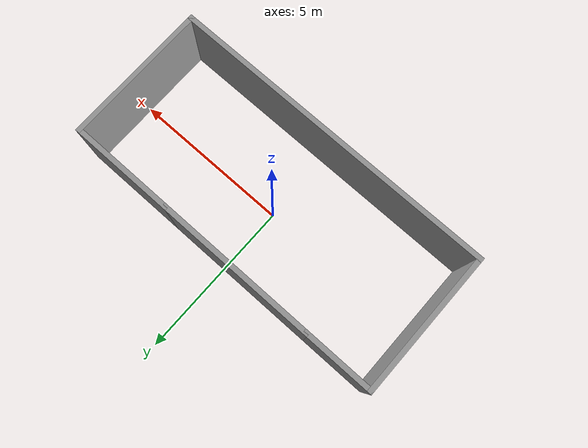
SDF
<?xml version='1.0'?>
<sdf version='1.7'>
  <model name='wall'>
    <pose>-0.014125 -0.112525 0 0 -0 0</pose>
    <link name='Wall_3'>
      <collision name='Wall_3_Collision'>
        <geometry>
          <box>
            <size>5 0.15 2.5</size>
          </box>
        </geometry>
        <pose>0 0 1.25 0 -0 0</pose>
      </collision>
      <visual name='Wall_3_Visual'>
        <pose>0 0 1.25 0 -0 0</pose>
        <geometry>
          <box>
            <size>5 0.15 2.5</size>
          </box>
        </geometry>
        <material>
          <script>
            <uri>file://media/materials/scripts/gazebo.material</uri>
            <name>Gazebo/Grey</name>
          </script>
          <ambient>1 1 1 1</ambient>
        </material>
        <meta>
          <layer>0</layer>
        </meta>
      </visual>
      <pose>-0.525 2.175 0 0 -0 3.14159</pose>
    </link>
    <link name='Wall_5'>
      <collision name='Wall_5_Collision'>
        <geometry>
          <box>
            <size>2.25 0.15 2.5</size>
          </box>
        </geometry>
        <pose>0 0 1.25 0 -0 0</pose>
      </collision>
      <visual name='Wall_5_Visual'>
        <pose>0 0 1.25 0 -0 0</pose>
        <geometry>
          <box>
            <size>2.25 0.15 2.5</size>
          </box>
        </geometry>
        <material>
          <script>
            <uri>file://media/materials/scripts/gazebo.material</uri>
            <name>Gazebo/Grey</name>
          </script>
          <ambient>1 1 1 1</ambient>
        </material>
        <meta>
          <layer>0</layer>
        </meta>
      </visual>
      <pose>-4 2.175 0 0 -0 3.14159</pose>
    </link>
    <link name='Wall_6'>
      <collision name='Wall_6_Collision'>
        <geometry>
          <box>
            <size>4.5 0.15 2.5</size>
          </box>
        </geometry>
        <pose>0 0 1.25 0 -0 0</pose>
      </collision>
      <visual name='Wall_6_Visual'>
        <pose>0 0 1.25 0 -0 0</pose>
        <geometry>
          <box>
            <size>4.5 0.15 2.5</size>
          </box>
        </geometry>
        <material>
          <script>
            <uri>file://media/materials/scripts/gazebo.material</uri>
            <name>Gazebo/Grey</name>
          </script>
          <ambient>1 1 1 1</ambient>
        </material>
        <meta>
          <layer>0</layer>
        </meta>
      </visual>
      <pose>-5.05 -0 0 0 -0 -1.5708</pose>
    </link>
    <link name='Wall_7'>
      <collision name='Wall_7_Collision'>
        <geometry>
          <box>
            <size>10.25 0.15 2.5</size>
          </box>
        </geometry>
        <pose>0 0 1.25 0 -0 0</pose>
      </collision>
      <visual name='Wall_7_Visual'>
        <pose>0 0 1.25 0 -0 0</pose>
        <geometry>
          <box>
            <size>10.25 0.15 2.5</size>
          </box>
        </geometry>
        <material>
          <script>
            <uri>file://media/materials/scripts/gazebo.material</uri>
            <name>Gazebo/Grey</name>
          </script>
          <ambient>1 1 1 1</ambient>
        </material>
        <meta>
          <layer>0</layer>
        </meta>
      </visual>
      <pose>0 -2.175 0 0 -0 0</pose>
    </link>
    <link name='Wall_8'>
      <collision name='Wall_8_Collision'>
        <geometry>
          <box>
            <size>4.5 0.15 2.5</size>
          </box>
        </geometry>
        <pose>0 0 1.25 0 -0 0</pose>
      </collision>
      <visual name='Wall_8_Visual'>
        <pose>0 0 1.25 0 -0 0</pose>
        <geometry>
          <box>
            <size>4.5 0.15 2.5</size>
          </box>
        </geometry>
        <material>
          <script>
            <uri>file://media/materials/scripts/gazebo.material</uri>
            <name>Gazebo/Grey</name>
          </script>
          <ambient>1 1 1 1</ambient>
        </material>
        <meta>
          <layer>0</layer>
        </meta>
      </visual>
      <pose>5.05 -0 0 0 -0 1.5708</pose>
    </link>
    <link name='Wall_9'>
      <collision name='Wall_9_Collision'>
        <geometry>
          <box>
            <size>3.3 0.15 2.5</size>
          </box>
        </geometry>
        <pose>0 0 1.25 0 -0 0</pose>
      </collision>
      <visual name='Wall_9_Visual'>
        <pose>0 0 1.25 0 -0 0</pose>
        <geometry>
          <box>
            <size>3.3 0.15 2.5</size>
          </box>
        </geometry>
        <material>
          <script>
            <uri>file://media/materials/scripts/gazebo.material</uri>
            <name>Gazebo/Grey</name>
          </script>
          <ambient>1 1 1 1</ambient>
        </material>
        <meta>
          <layer>0</layer>
        </meta>
      </visual>
      <pose>3.475 2.175 0 0 -0 -3.14159</pose>
    </link>
    <static>1</static>
  </model>
</sdf>
